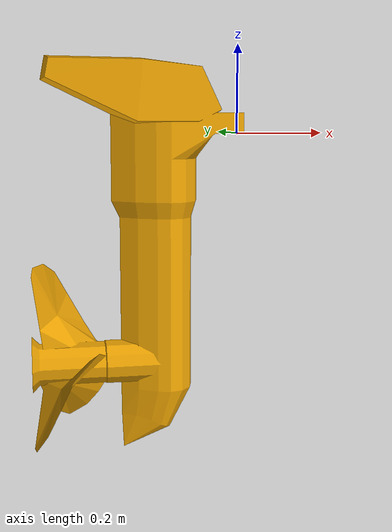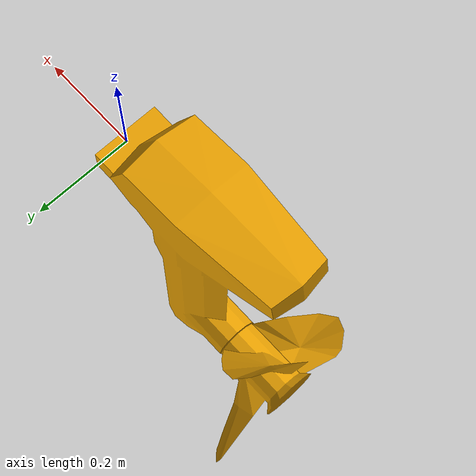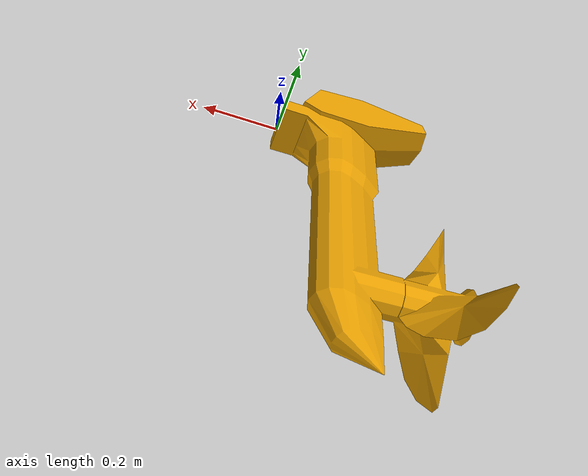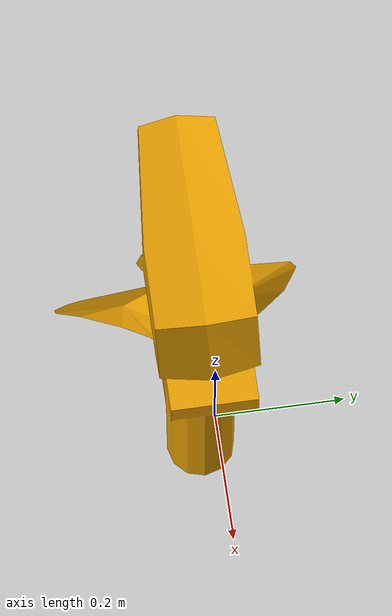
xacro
<?xml version="1.0"?>
<robot
  xmlns:xacro="http://ros.org/wiki/xacro" name="torqeedo">
  <xacro:include filename="properties.urdf.xacro"/>
  <link name="torqeedo">
    <wind>true</wind>
    <visual>
      <geometry>
        <mesh filename="package://wamv_description/mesh/torqeedo.dae"/>
      </geometry>
    </visual>
    <!-- Left engine upper -->
    <collision name="left_engine_vertical_axis">
      <origin xyz="-0.2 0 -0.23" rpy="0 0 0" />
      <geometry>
        <box size="0.2 0.15 0.83" />
      </geometry>
    </collision>
    <collision name="left_engine_rear_end">
      <origin xyz="-0.36 0 0.13" rpy="0 0 0" />
      <geometry>
        <box size="0.12 0.15 0.12" />
      </geometry>
    </collision>
    <collision name="left_propeller">
      <origin xyz="-0.38 0 -0.52" rpy="0 1.57 0" />
      <geometry>
        <cylinder length="0.18" radius="0.24" />
      </geometry>
    </collision>
  </link>
</robot>
